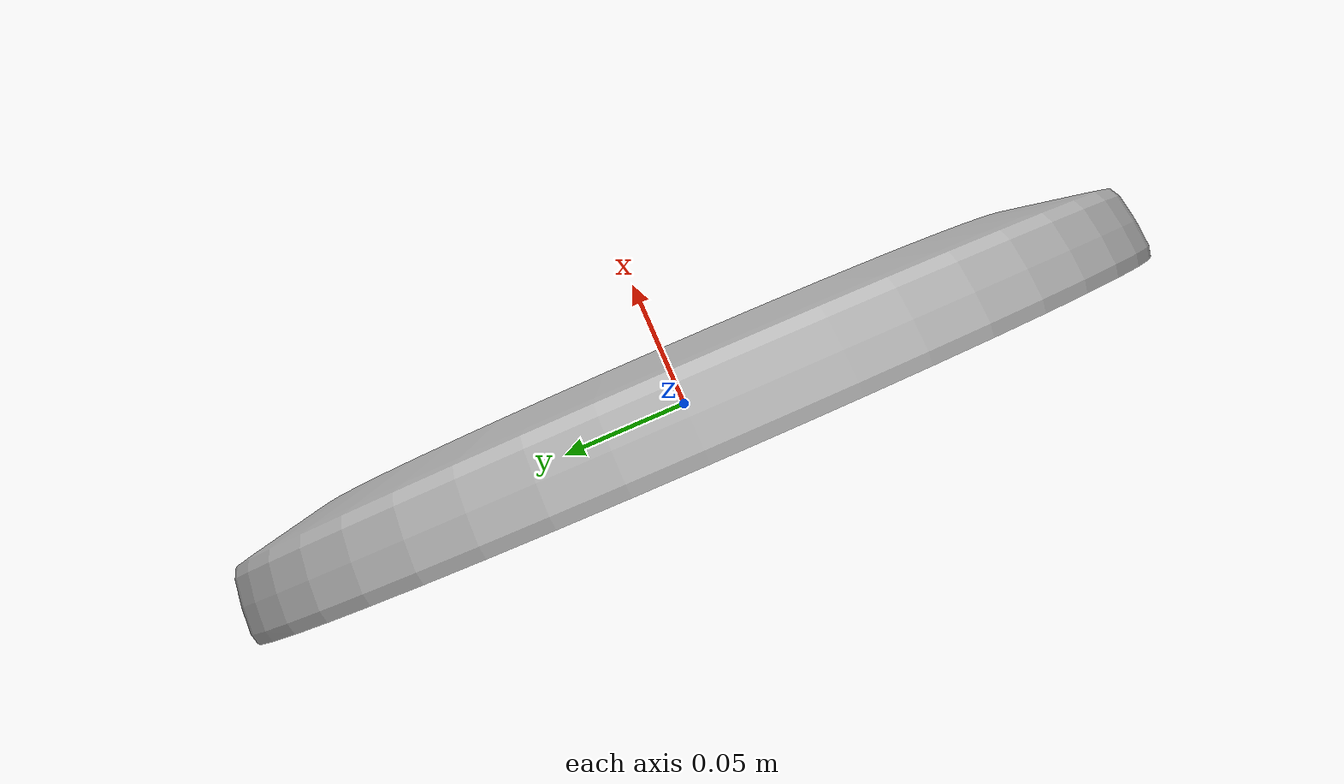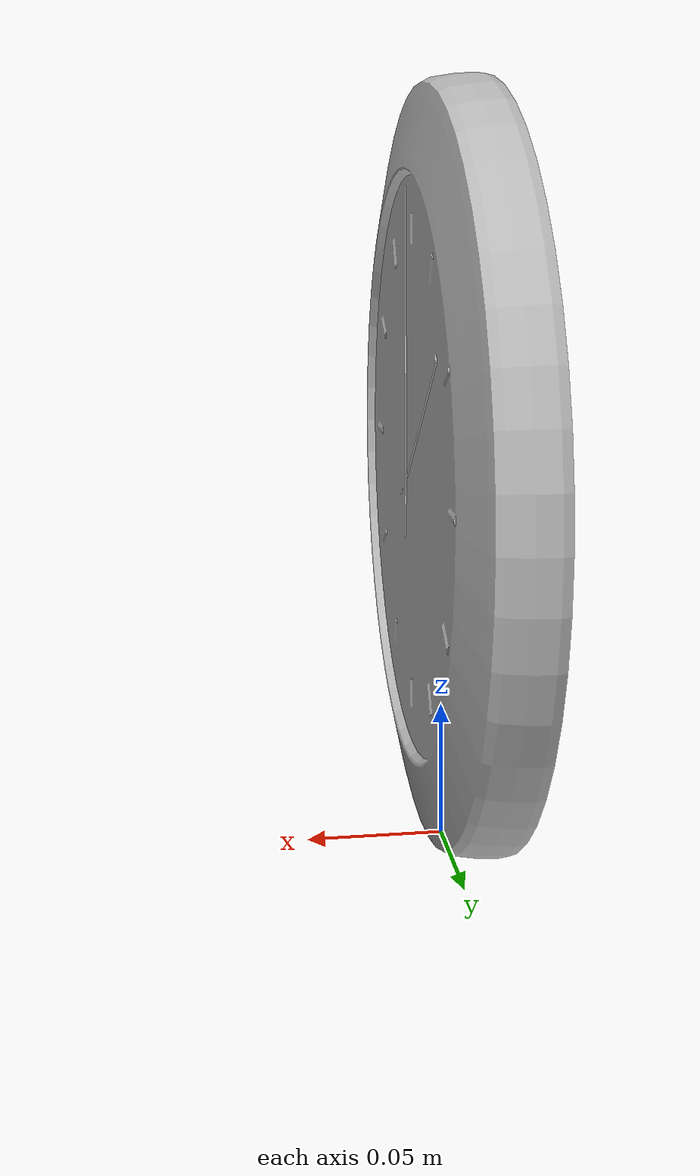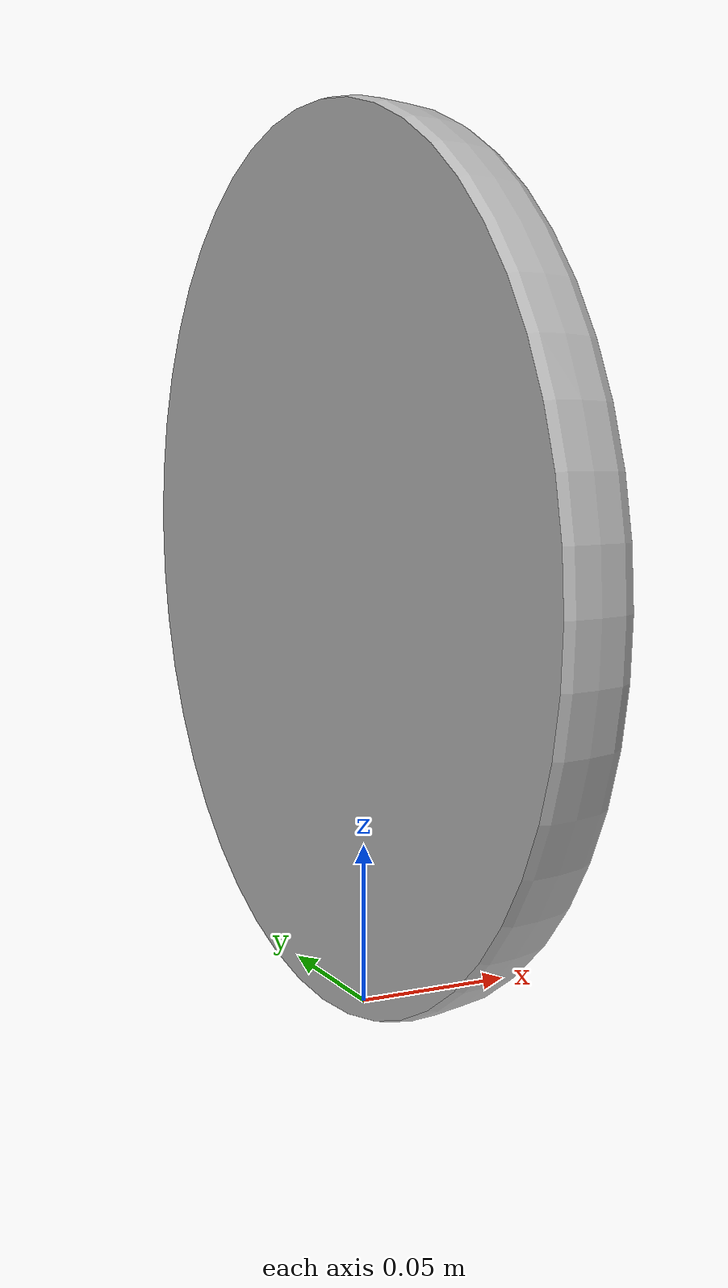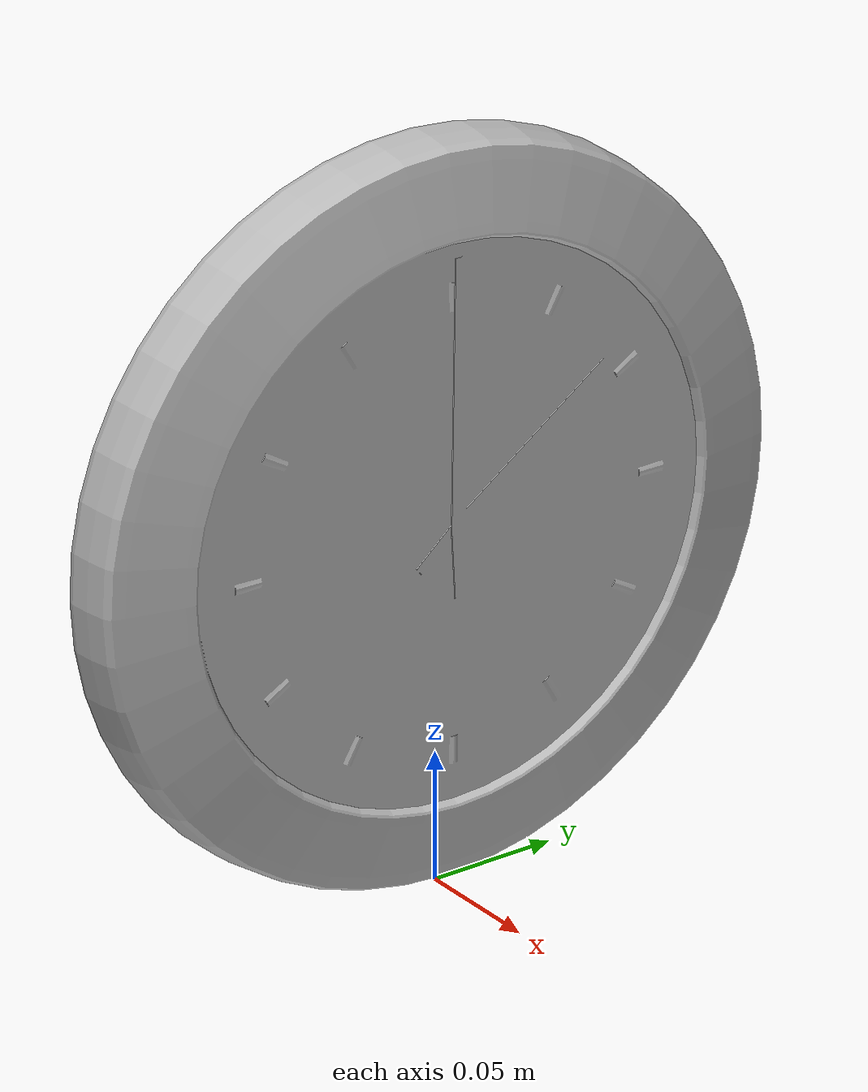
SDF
<?xml version='1.0'?>
<sdf version='1.4'>
  <model name='313'>
    <pose>0 0 0 0 0 0</pose>
    <static>true</static>
    <link name='link'>
      <collision name='collision'>
        <pose>0 0 0 0 0 0</pose>
        <geometry>
          <box>
            <size>0.028 0.28 0</size>
          </box>
        </geometry>
      </collision>
      <visual name='visual'>
        <pose>0 0 0 0 0 0</pose>
        <geometry>
          <mesh><uri>model://313/313.dae</uri></mesh>
        </geometry>
      </visual>
    </link>
  </model>
</sdf>
